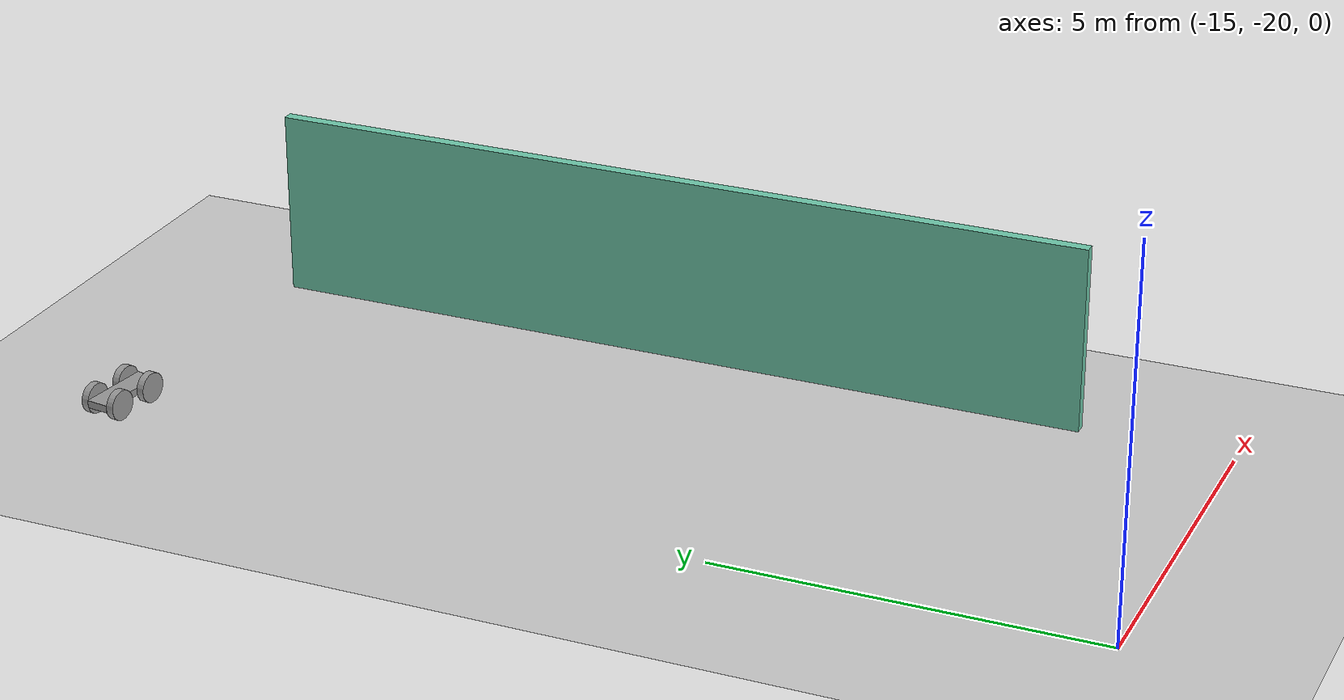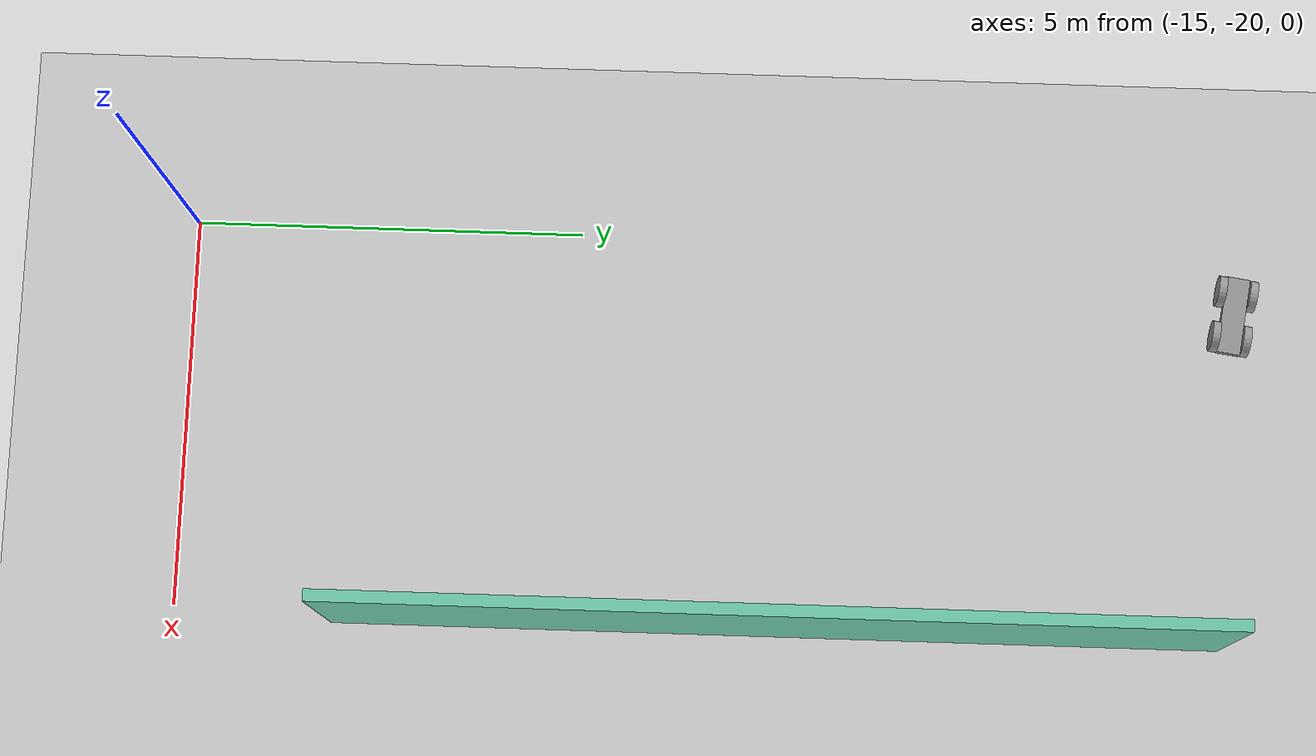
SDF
<sdf version="1.6">
 <world name="default">
  <model name="ground_plane">
   <static>1</static>
   <link name="link">
    <collision name="collision">
     <geometry><plane><normal>0 0 1</normal><size>100 100</size></plane></geometry>
     <surface>
      <contact><collide_bitmask>65535</collide_bitmask></contact>
      <friction><ode><mu>100</mu><mu2>50</mu2></ode></friction>
     </surface>
    </collision>
    <visual name="visual">
     <cast_shadows>0</cast_shadows>
     <geometry><plane><normal>0 0 1</normal><size>100 100</size></plane></geometry>
     <material>
      <script><uri>file://media/materials/scripts/gazebo.material</uri><name>Gazebo/Grey</name></script>
     </material>
    </visual>
   </link>
  </model>
  <model name="world">
   <pose>0.998 -1.93669 0 0 -0 0</pose>
   <link name="Wall_24">
    <collision name="Wall_24_Collision">
     <geometry><box><size>11.25 0.15 2.5</size></box></geometry>
     <pose>0 0 1.25 0 -0 0</pose>
    </collision>
    <visual name="Wall_24_Visual">
     <pose>0 0 1.25 0 -0 0</pose>
     <geometry><box><size>11.25 0.15 2.5</size></box></geometry>
     <material>
      <script><uri>file://media/materials/scripts/gazebo.material</uri><name>Gazebo/Grey</name></script>
      <ambient>0.435294 0.796078 0.67451 1</ambient>
     </material>
     <meta><layer>0</layer></meta>
    </visual>
    <pose>-10.9133 -10.4214 0 0 0 -1.5708</pose>
   </link>
   <static>1</static>
  </model>
  <model name="bot2">
   <link name="link_0">
    <inertial>
     <mass>1</mass>
     <inertia>
      <ixx>0.166667</ixx>
      <ixy>0</ixy>
      <ixz>0</ixz>
      <iyy>0.166667</iyy>
      <iyz>0</iyz>
      <izz>0.166667</izz>
     </inertia>
    </inertial>
    <visual name="visual">
     <geometry><box><size>1 0.3 0.1</size></box></geometry>
     <material>
      <lighting>1</lighting>
      <script><uri>file://media/materials/scripts/gazebo.material</uri><name>Gazebo/Grey</name></script>
      <shader type="pixel"><normal_map>__default__</normal_map></shader>
      <ambient>0.3 0.3 0.3 1</ambient>
      <diffuse>0.7 0.7 0.7 1</diffuse>
      <specular>0.01 0.01 0.01 1</specular>
      <emissive>0 0 0 1</emissive>
     </material>
    </visual>
    <collision name="collision">
     <geometry><box><size>1 0.3 0.1</size></box></geometry>
     <surface>
      <friction>
       <ode><mu>1</mu><mu2>1</mu2><fdir1>0 0 0</fdir1><slip1>0</slip1><slip2>0</slip2></ode>
       <torsional>
        <coefficient>1</coefficient>
        <patch_radius>0</patch_radius>
        <surface_radius>0</surface_radius>
        <use_patch_radius>1</use_patch_radius>
        <ode><slip>0</slip></ode>
       </torsional>
      </friction>
      <bounce><restitution_coefficient>0</restitution_coefficient><threshold>1e+06</threshold></bounce>
      <contact>
       <collide_without_contact>0</collide_without_contact>
       <collide_without_contact_bitmask>1</collide_without_contact_bitmask>
       <collide_bitmask>1</collide_bitmask>
       <ode>
        <soft_cfm>0</soft_cfm>
        <soft_erp>0.2</soft_erp>
        <kp>1e+13</kp>
        <kd>1</kd>
        <max_vel>0.01</max_vel>
        <min_depth>0</min_depth>
       </ode>
       <bullet>
        <split_impulse>1</split_impulse>
        <split_impulse_penetration_threshold>-0.01</split_impulse_penetration_threshold>
        <soft_cfm>0</soft_cfm>
        <soft_erp>0.2</soft_erp>
        <kp>1e+13</kp>
        <kd>1</kd>
       </bullet>
      </contact>
     </surface>
    </collision>
   </link>
   <link name="link_1">
    <pose>-0.3 -0.200019 0 1.5707 -0 0</pose>
    <inertial>
     <mass>1</mass>
     <inertia><ixx>0.145833</ixx><ixy>0</ixy><ixz>0</ixz><iyy>0.145833</iyy><iyz>0</iyz><izz>0.125</izz></inertia>
    </inertial>
    <visual name="visual">
     <geometry><cylinder><radius>0.2</radius><length>0.1</length></cylinder></geometry>
     <material>
      <lighting>1</lighting>
      <script><uri>file://media/materials/scripts/gazebo.material</uri><name>Gazebo/Grey</name></script>
      <shader type="pixel"><normal_map>__default__</normal_map></shader>
      <ambient>0.3 0.3 0.3 1</ambient>
      <diffuse>0.7 0.7 0.7 1</diffuse>
      <specular>0.01 0.01 0.01 1</specular>
      <emissive>0 0 0 1</emissive>
     </material>
    </visual>
    <collision name="collision">
     <geometry><cylinder><radius>0.2</radius><length>0.1</length></cylinder></geometry>
     <surface>
      <friction>
       <ode><mu>1</mu><mu2>1</mu2><fdir1>0 0 0</fdir1><slip1>0</slip1><slip2>0</slip2></ode>
       <torsional>
        <coefficient>1</coefficient>
        <patch_radius>0</patch_radius>
        <surface_radius>0</surface_radius>
        <use_patch_radius>1</use_patch_radius>
        <ode><slip>0</slip></ode>
       </torsional>
      </friction>
      <bounce><restitution_coefficient>0</restitution_coefficient><threshold>1e+06</threshold></bounce>
      <contact>
       <collide_without_contact>0</collide_without_contact>
       <collide_without_contact_bitmask>1</collide_without_contact_bitmask>
       <collide_bitmask>1</collide_bitmask>
       <ode>
        <soft_cfm>0</soft_cfm>
        <soft_erp>0.2</soft_erp>
        <kp>1e+13</kp>
        <kd>1</kd>
        <max_vel>0.01</max_vel>
        <min_depth>0</min_depth>
       </ode>
       <bullet>
        <split_impulse>1</split_impulse>
        <split_impulse_penetration_threshold>-0.01</split_impulse_penetration_threshold>
        <soft_cfm>0</soft_cfm>
        <soft_erp>0.2</soft_erp>
        <kp>1e+13</kp>
        <kd>1</kd>
       </bullet>
      </contact>
     </surface>
    </collision>
   </link>
   <link name="link_1_clone">
    <pose>-0.3 0.200019 0 1.5707 -0 0</pose>
    <inertial>
     <mass>1</mass>
     <inertia><ixx>0.145833</ixx><ixy>0</ixy><ixz>0</ixz><iyy>0.145833</iyy><iyz>0</iyz><izz>0.125</izz></inertia>
    </inertial>
    <visual name="visual">
     <geometry><cylinder><radius>0.2</radius><length>0.1</length></cylinder></geometry>
     <material>
      <lighting>1</lighting>
      <script><uri>file://media/materials/scripts/gazebo.material</uri><name>Gazebo/Grey</name></script>
      <shader type="pixel"><normal_map>__default__</normal_map></shader>
      <ambient>0.3 0.3 0.3 1</ambient>
      <diffuse>0.7 0.7 0.7 1</diffuse>
      <specular>0.01 0.01 0.01 1</specular>
      <emissive>0 0 0 1</emissive>
     </material>
    </visual>
    <collision name="collision">
     <geometry><cylinder><radius>0.2</radius><length>0.1</length></cylinder></geometry>
     <surface>
      <friction>
       <ode><mu>1</mu><mu2>1</mu2><fdir1>0 0 0</fdir1><slip1>0</slip1><slip2>0</slip2></ode>
       <torsional>
        <coefficient>1</coefficient>
        <patch_radius>0</patch_radius>
        <surface_radius>0</surface_radius>
        <use_patch_radius>1</use_patch_radius>
        <ode><slip>0</slip></ode>
       </torsional>
      </friction>
      <bounce><restitution_coefficient>0</restitution_coefficient><threshold>1e+06</threshold></bounce>
      <contact>
       <collide_without_contact>0</collide_without_contact>
       <collide_without_contact_bitmask>1</collide_without_contact_bitmask>
       <collide_bitmask>1</collide_bitmask>
       <ode>
        <soft_cfm>0</soft_cfm>
        <soft_erp>0.2</soft_erp>
        <kp>1e+13</kp>
        <kd>1</kd>
        <max_vel>0.01</max_vel>
        <min_depth>0</min_depth>
       </ode>
       <bullet>
        <split_impulse>1</split_impulse>
        <split_impulse_penetration_threshold>-0.01</split_impulse_penetration_threshold>
        <soft_cfm>0</soft_cfm>
        <soft_erp>0.2</soft_erp>
        <kp>1e+13</kp>
        <kd>1</kd>
       </bullet>
      </contact>
     </surface>
    </collision>
   </link>
   <link name="link_1_clone_0">
    <pose>0.3 0.200019 0 1.5707 -0 0</pose>
    <inertial>
     <mass>1</mass>
     <inertia><ixx>0.145833</ixx><ixy>0</ixy><ixz>0</ixz><iyy>0.145833</iyy><iyz>0</iyz><izz>0.125</izz></inertia>
    </inertial>
    <visual name="visual">
     <geometry><cylinder><radius>0.2</radius><length>0.1</length></cylinder></geometry>
     <material>
      <lighting>1</lighting>
      <script><uri>file://media/materials/scripts/gazebo.material</uri><name>Gazebo/Grey</name></script>
      <shader type="pixel"><normal_map>__default__</normal_map></shader>
      <ambient>0.3 0.3 0.3 1</ambient>
      <diffuse>0.7 0.7 0.7 1</diffuse>
      <specular>0.01 0.01 0.01 1</specular>
      <emissive>0 0 0 1</emissive>
     </material>
    </visual>
    <collision name="collision">
     <geometry><cylinder><radius>0.2</radius><length>0.1</length></cylinder></geometry>
     <surface>
      <friction>
       <ode><mu>1</mu><mu2>1</mu2><fdir1>0 0 0</fdir1><slip1>0</slip1><slip2>0</slip2></ode>
       <torsional>
        <coefficient>1</coefficient>
        <patch_radius>0</patch_radius>
        <surface_radius>0</surface_radius>
        <use_patch_radius>1</use_patch_radius>
        <ode><slip>0</slip></ode>
       </torsional>
      </friction>
      <bounce><restitution_coefficient>0</restitution_coefficient><threshold>1e+06</threshold></bounce>
      <contact>
       <collide_without_contact>0</collide_without_contact>
       <collide_without_contact_bitmask>1</collide_without_contact_bitmask>
       <collide_bitmask>1</collide_bitmask>
       <ode>
        <soft_cfm>0</soft_cfm>
        <soft_erp>0.2</soft_erp>
        <kp>1e+13</kp>
        <kd>1</kd>
        <max_vel>0.01</max_vel>
        <min_depth>0</min_depth>
       </ode>
       <bullet>
        <split_impulse>1</split_impulse>
        <split_impulse_penetration_threshold>-0.01</split_impulse_penetration_threshold>
        <soft_cfm>0</soft_cfm>
        <soft_erp>0.2</soft_erp>
        <kp>1e+13</kp>
        <kd>1</kd>
       </bullet>
      </contact>
     </surface>
    </collision>
   </link>
   <link name="link_1_clone_1">
    <pose>0.3 -0.200019 0 1.5707 -0 0</pose>
    <inertial>
     <mass>1</mass>
     <inertia><ixx>0.145833</ixx><ixy>0</ixy><ixz>0</ixz><iyy>0.145833</iyy><iyz>0</iyz><izz>0.125</izz></inertia>
    </inertial>
    <visual name="visual">
     <geometry><cylinder><radius>0.2</radius><length>0.1</length></cylinder></geometry>
     <material>
      <lighting>1</lighting>
      <script><uri>file://media/materials/scripts/gazebo.material</uri><name>Gazebo/Grey</name></script>
      <shader type="pixel"><normal_map>__default__</normal_map></shader>
      <ambient>0.3 0.3 0.3 1</ambient>
      <diffuse>0.7 0.7 0.7 1</diffuse>
      <specular>0.01 0.01 0.01 1</specular>
      <emissive>0 0 0 1</emissive>
     </material>
    </visual>
    <collision name="collision">
     <geometry><cylinder><radius>0.2</radius><length>0.1</length></cylinder></geometry>
     <surface>
      <friction>
       <ode><mu>1</mu><mu2>1</mu2><fdir1>0 0 0</fdir1><slip1>0</slip1><slip2>0</slip2></ode>
       <torsional>
        <coefficient>1</coefficient>
        <patch_radius>0</patch_radius>
        <surface_radius>0</surface_radius>
        <use_patch_radius>1</use_patch_radius>
        <ode><slip>0</slip></ode>
       </torsional>
      </friction>
      <bounce><restitution_coefficient>0</restitution_coefficient><threshold>1e+06</threshold></bounce>
      <contact>
       <collide_without_contact>0</collide_without_contact>
       <collide_without_contact_bitmask>1</collide_without_contact_bitmask>
       <collide_bitmask>1</collide_bitmask>
       <ode>
        <soft_cfm>0</soft_cfm>
        <soft_erp>0.2</soft_erp>
        <kp>1e+13</kp>
        <kd>1</kd>
        <max_vel>0.01</max_vel>
        <min_depth>0</min_depth>
       </ode>
       <bullet>
        <split_impulse>1</split_impulse>
        <split_impulse_penetration_threshold>-0.01</split_impulse_penetration_threshold>
        <soft_cfm>0</soft_cfm>
        <soft_erp>0.2</soft_erp>
        <kp>1e+13</kp>
        <kd>1</kd>
       </bullet>
      </contact>
     </surface>
    </collision>
   </link>
   <joint name="link_0_JOINT_0" type="revolute">
    <parent>link_0</parent>
    <child>link_1</child>
    <axis>
     <xyz>0 0 1</xyz>
     <use_parent_model_frame>0</use_parent_model_frame>
     <limit>
      <lower>-1.79769e+308</lower>
      <upper>1.79769e+308</upper>
      <effort>-1</effort>
      <velocity>-1</velocity>
     </limit>
     <dynamics>
      <spring_reference>0</spring_reference>
      <spring_stiffness>0</spring_stiffness>
      <damping>0</damping>
     </dynamics>
    </axis>
    <physics>
     <ode><limit><cfm>0</cfm><erp>0.2</erp></limit><suspension><cfm>0</cfm><erp>0.2</erp></suspension></ode>
    </physics>
   </joint>
   <joint name="link_0_JOINT_1" type="revolute">
    <parent>link_0</parent>
    <child>link_1_clone_1</child>
    <axis>
     <xyz>0 0 1</xyz>
     <use_parent_model_frame>0</use_parent_model_frame>
     <limit>
      <lower>-1.79769e+308</lower>
      <upper>1.79769e+308</upper>
      <effort>-1</effort>
      <velocity>-1</velocity>
     </limit>
     <dynamics>
      <spring_reference>0</spring_reference>
      <spring_stiffness>0</spring_stiffness>
      <damping>0</damping>
     </dynamics>
    </axis>
    <physics>
     <ode><limit><cfm>0</cfm><erp>0.2</erp></limit><suspension><cfm>0</cfm><erp>0.2</erp></suspension></ode>
    </physics>
   </joint>
   <joint name="link_0_JOINT_2" type="revolute">
    <parent>link_0</parent>
    <child>link_1_clone</child>
    <axis>
     <xyz>0 0 1</xyz>
     <use_parent_model_frame>0</use_parent_model_frame>
     <limit>
      <lower>-1.79769e+308</lower>
      <upper>1.79769e+308</upper>
      <effort>-1</effort>
      <velocity>-1</velocity>
     </limit>
     <dynamics>
      <spring_reference>0</spring_reference>
      <spring_stiffness>0</spring_stiffness>
      <damping>0</damping>
     </dynamics>
    </axis>
    <physics>
     <ode><limit><cfm>0</cfm><erp>0.2</erp></limit><suspension><cfm>0</cfm><erp>0.2</erp></suspension></ode>
    </physics>
   </joint>
   <joint name="link_0_JOINT_3" type="revolute">
    <parent>link_0</parent>
    <child>link_1_clone_0</child>
    <axis>
     <xyz>0 0 1</xyz>
     <use_parent_model_frame>0</use_parent_model_frame>
     <limit>
      <lower>-1.79769e+308</lower>
      <upper>1.79769e+308</upper>
      <effort>-1</effort>
      <velocity>-1</velocity>
     </limit>
     <dynamics>
      <spring_reference>0</spring_reference>
      <spring_stiffness>0</spring_stiffness>
      <damping>0</damping>
     </dynamics>
    </axis>
    <physics>
     <ode><limit><cfm>0</cfm><erp>0.2</erp></limit><suspension><cfm>0</cfm><erp>0.2</erp></suspension></ode>
    </physics>
   </joint>
   <static>0</static>
   <pose>-14.1431 -6.56488 0.210005 0 0 -0.140085</pose>
  </model>
 </world>
</sdf>
